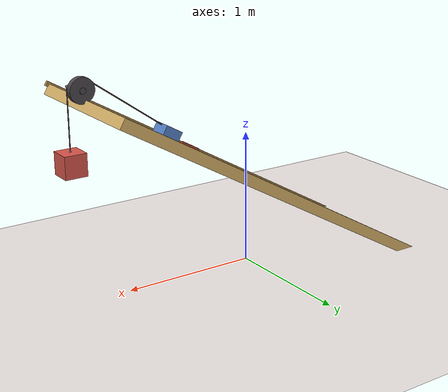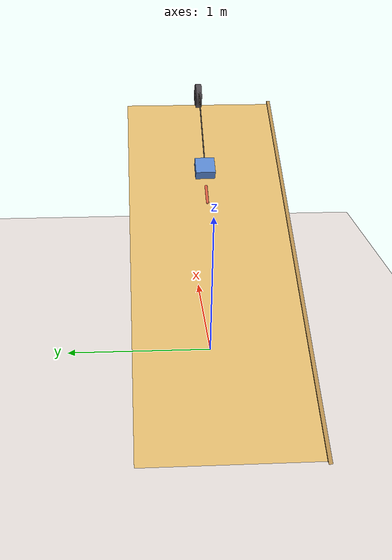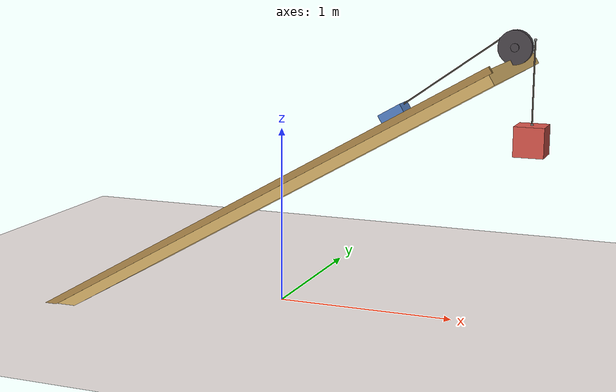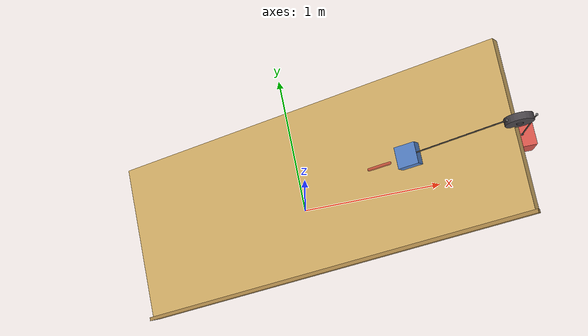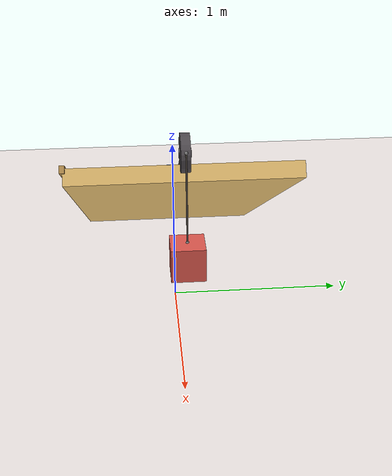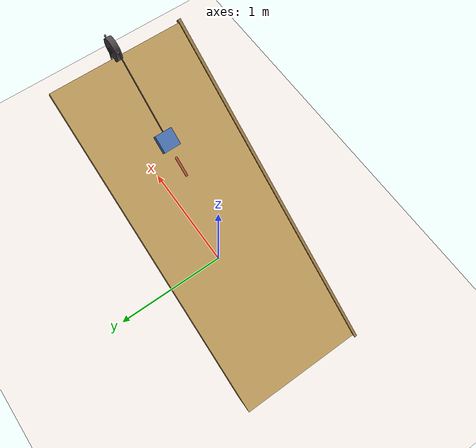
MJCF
<mujoco model="incline_with_pulley">
  <compiler angle="radian" coordinate="local" autolimits="true"/>
  <option timestep="0.001" gravity="0 0 -9.81" integrator="implicitfast"
          impratio="3" cone="elliptic"/>

  <visual>
    <headlight diffuse="0 0 0" ambient="0.50 0.48 0.55" specular="0 0 0"/>
    <rgba haze="0.94 0.91 0.90 1"/>
    <global azimuth="120" elevation="-15" offwidth="1920" offheight="1080" fovy="38"/>
    <quality shadowsize="8192" offsamples="8"/>
    <map shadowclip="6" shadowscale="0.7"/>
  </visual>

  <asset>
    <texture type="skybox" builtin="flat"
             rgb1="0.74 0.68 0.86" rgb2="0.74 0.68 0.86"
             width="512" height="512" mark="none" markrgb="0 0 0"/>

    <material name="floor_mat" rgba="0.94 0.91 0.90 1" specular="0" shininess="0"/>
    <material name="ramp_mat" rgba="0.86 0.71 0.42 1" specular="0.1" shininess="0.15"/>
    <material name="ramp_dark" rgba="0.70 0.55 0.30 1" specular="0.1" shininess="0.15"/>
    <material name="block_blue" rgba="0.34 0.52 0.80 1" specular="0.35" shininess="0.4"/>
    <material name="pulley_mat" rgba="0.30 0.28 0.30 1" specular="0.5" shininess="0.6"/>
    <material name="m_heavy" rgba="0.86 0.34 0.30 1" specular="0.3" shininess="0.4"/>
    <material name="string_mat" rgba="0.30 0.27 0.24 1" specular="0" shininess="0"/>
  </asset>

  <worldbody>
    <light pos="0 0 12" dir="-0.30 0.55 -1" directional="true" castshadow="true"
           diffuse="0.85 0.82 0.78" specular="0.15 0.15 0.15"/>
    <light pos="0 0 8" dir="0.40 -0.30 -1" directional="true" castshadow="false"
           diffuse="0.28 0.28 0.34" specular="0 0 0"/>

    <geom name="floor" type="plane" size="40 40 0.1" material="floor_mat"/>

    <!-- 30° ramp: low end left, high end right (+x). -->
    <geom name="ramp" type="box" size="1.5 0.55 0.04"
          pos="0 0 0.65" euler="0 -0.5235987756 0"
          material="ramp_mat" contype="0" conaffinity="0"/>
    <geom type="box" size="1.5 0.012 0.018"
          pos="0 -0.55 0.69" euler="0 -0.5235987756 0" material="ramp_dark"
          contype="0" conaffinity="0"/>

    <!-- Pulley at the high (+x) end of the ramp -->
    <geom type="cylinder" size="0.09 0.022" pos="1.30 0 1.50"
          euler="1.5708 0 0" material="pulley_mat"
          contype="0" conaffinity="0"/>
    <geom type="cylinder" size="0.022 0.028" pos="1.30 0 1.50"
          euler="1.5708 0 0" material="pulley_mat"
          contype="0" conaffinity="0"/>

    <site name="pulley_ramp" pos="1.22 0 1.54" size="0.008"/>
    <site name="pulley_drop" pos="1.40 0 1.54" size="0.008"/>

    <!-- Teaching arrows (visual only) -->
    <geom name="arrow_weight_comp" type="capsule"
          fromto="0.55 0 1.02 0.42 0 0.945"
          size="0.010" rgba="0.88 0.28 0.24 0.75" contype="0" conaffinity="0"/>

    <!-- Block on the ramp: q=0 is mid-ramp; +q moves up-ramp toward the pulley. -->
    <body name="block" pos="0.674 0 1.097" euler="0 -0.5235987756 0">
      <joint name="j_ramp" type="slide" axis="1 0 0"
             damping="13.0" range="0 0.52"/>
      <site name="hook_block" pos="0.06 0 0.05" size="0.008"/>
      <geom type="box" size="0.07 0.07 0.06" mass="0.35"
            material="block_blue" friction="0.04 0.001 0.0001"
            contype="0" conaffinity="0"/>
    </body>

    <!-- Hanging mass: q=0 is high on a long vertical string; negative q descends. -->
    <body name="m_hang" pos="1.40 0 1.02">
      <joint name="j_hang" type="slide" axis="0 0 1"
             damping="13.0" range="-0.68 0"/>
      <site name="hook_hang" pos="0 0 0.08" size="0.008"/>
      <geom type="box" size="0.08 0.08 0.08" mass="0.55" material="m_heavy"
            contype="0" conaffinity="0"/>
    </body>

    <!-- Side-view camera: looks along +y, screen up = +z -->
    <camera name="cam" pos="0.45 -4.2 0.95" fovy="34"
            xyaxes="1 0 0  0 0 1"/>
  </worldbody>

  <tendon>
    <spatial name="string_ramp" width="0.004" rgba="0.30 0.27 0.24 1" limited="false">
      <site site="hook_block"/>
      <site site="pulley_ramp"/>
    </spatial>
    <spatial name="string_drop" width="0.004" rgba="0.30 0.27 0.24 1" limited="false">
      <site site="pulley_drop"/>
      <site site="hook_hang"/>
    </spatial>
  </tendon>

  <!-- Inextensible string: q_ramp + q_hang = 0 — hanger down pulls block up-ramp. -->
  <equality>
    <joint joint1="j_ramp" joint2="j_hang" polycoef="0 -1 0 0 0"/>
  </equality>
</mujoco>
